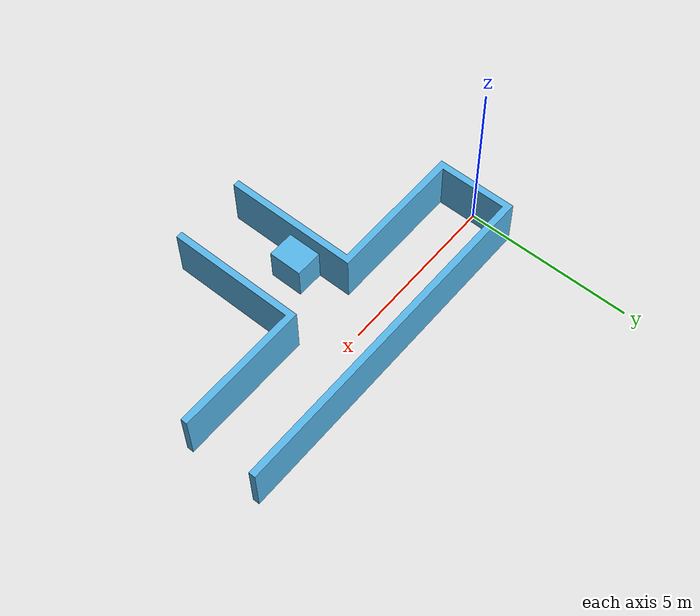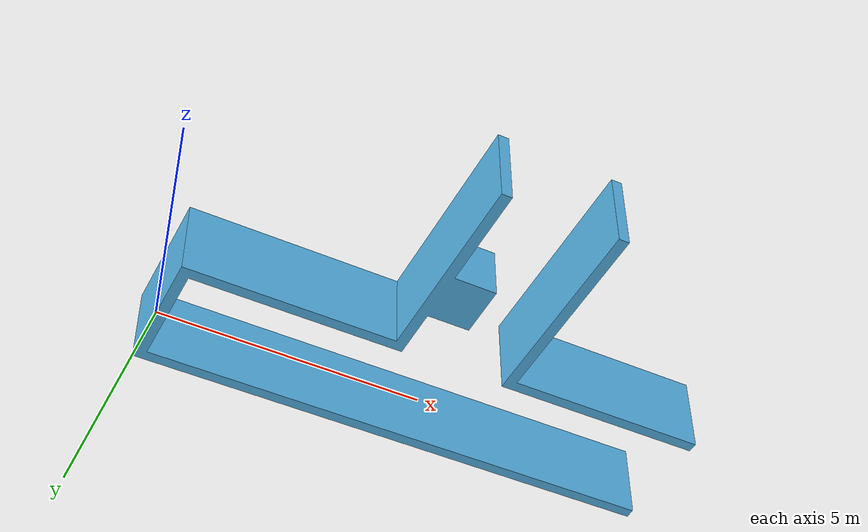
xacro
<?xml version="1.0"?>
<robot xmlns:xacro="http://www.ros.org/wiki/xacro"
       name="t_passage_obstacle">

  <xacro:include filename="$(find cob_gazebo_worlds)/urdf/common.xacro" />

  <xacro:macro name="t_passage_obstacle" params="name">

    <link name="world"/>

    <link name="world_link">
      <xacro:default_inertial/>
      <visual>
        <origin xyz="0 0 0" />
        <geometry>
          <mesh filename="package://msh_gazebo_worlds/Media/models/t_passage_obstacle.STL" />
        </geometry>
      </visual>
      <collision>
        <origin xyz="0 0 0" />
        <geometry>
          <mesh filename="package://msh_gazebo_worlds/Media/models/t_passage_obstacle.STL" />
        </geometry>
      </collision>
    </link>

    <joint name="world_joint" type="fixed">
      <origin xyz="0 0 0" rpy="0 0 0" />
      <parent link="world" />
      <child link="world_link" />
    </joint>

  </xacro:macro>

  <xacro:t_passage_obstacle name="t_passage_obstacle" />

</robot>
